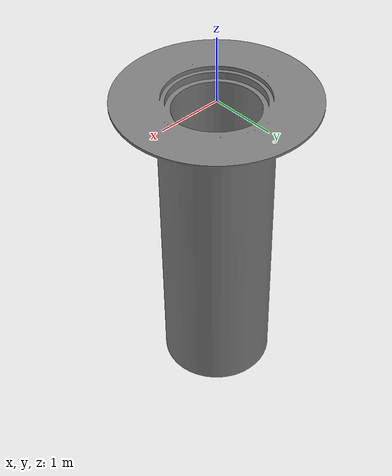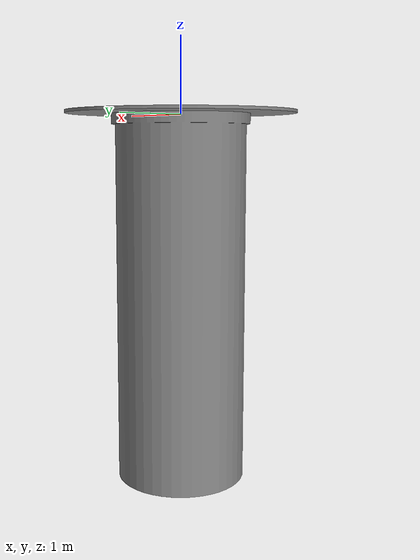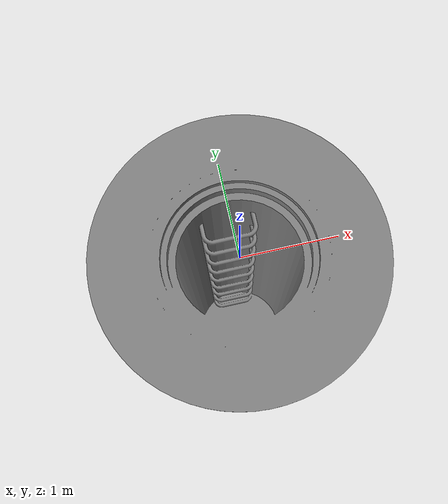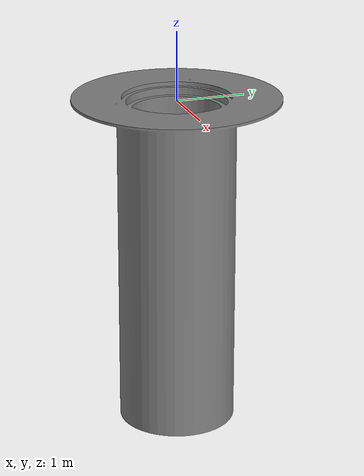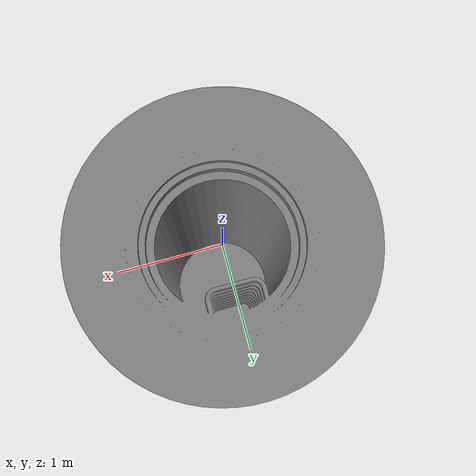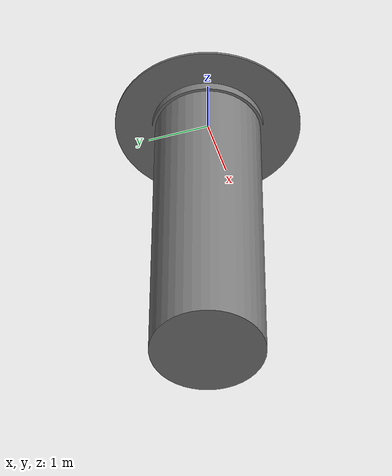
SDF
<?xml version="1.0" ?>
<sdf version="1.5">
  <model name="sewer">
    <static>true</static>
    <pose>0.0 0.0 0 0 0 0</pose>
    <link name="sewer">
      <collision name="collision">
        <geometry>
          <mesh>
            <scale> 2.5 2.5 2.5 </scale>
            <uri>model://sewer/meshes/sewer_res.stl</uri>
          </mesh>
        </geometry>
      </collision>
      <visual name="visual">
        <geometry>
          <mesh>
            <scale> 2.5 2.5 2.5 </scale>
            <uri>model://sewer/meshes/sewer_res.stl</uri>
          </mesh>
        </geometry>
        <cast_shadows>false</cast_shadows>
        <material>
          <ambient>0.4 0.4 0.4 1</ambient>
          <diffuse>0.5 0.5 0.5 1</diffuse>
          <specular>0.1 0.1 0.1 1</specular>
        </material>
      </visual>
    </link>
  </model>
</sdf>
